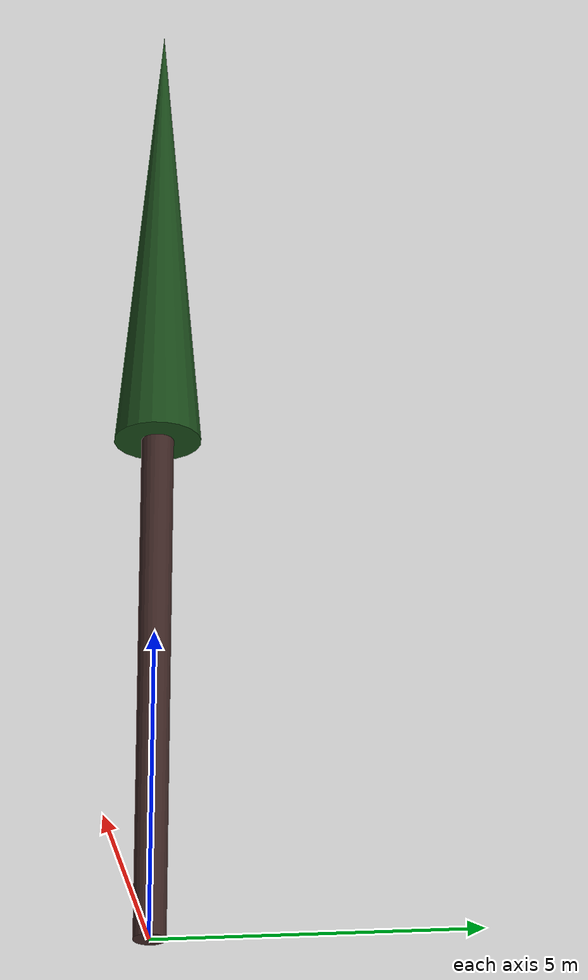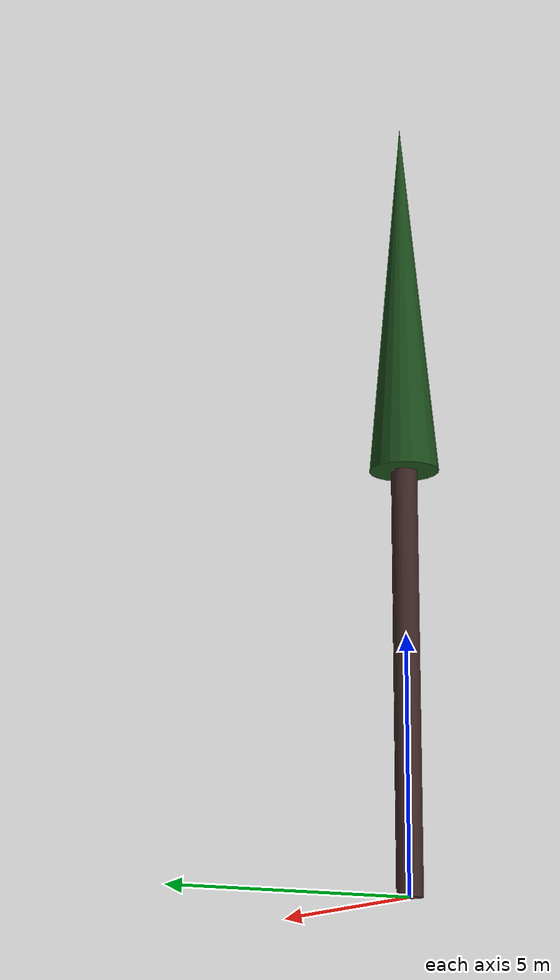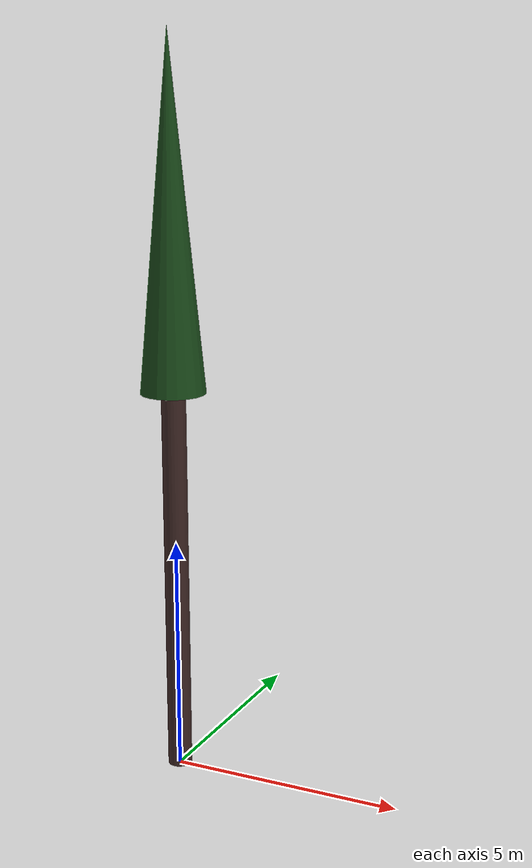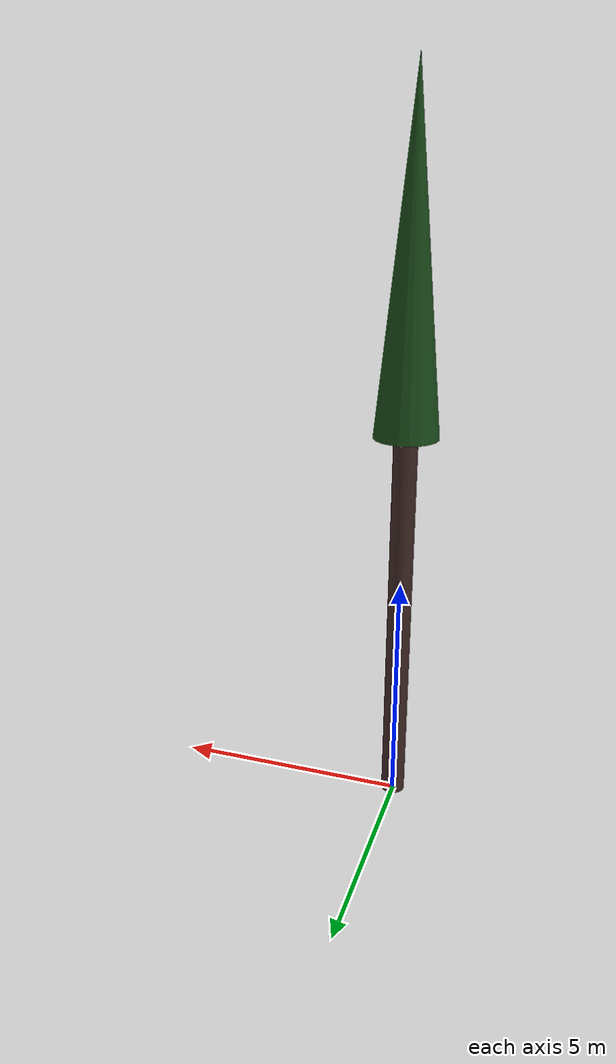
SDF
<?xml version="1.0" ?>
<sdf version="1.10">
  <model name="cypres_provence_02">
    <static>true</static>

    <!-- Tronc -->
    <link name="trunk">
      <pose>0 0 4.128128572598811 0 0 0</pose>
      <visual name="trunk_visual">
        <geometry>
          <cylinder>
            <radius>0.2554719121556512</radius>
            <length>8.256257145197623</length>
          </cylinder>
        </geometry>
        <material>
          <ambient>0.24 0.15 0.14 1</ambient>
          <diffuse>0.24 0.15 0.14 1</diffuse>
          <specular>0.1 0.1 0.1 1</specular>
        </material>
      </visual>
      <collision name="trunk_collision">
        <geometry>
          <cylinder>
            <radius>0.2554719121556512</radius>
            <length>8.256257145197623</length>
          </cylinder>
        </geometry>
      </collision>
    </link>

    <!-- Feuillage -->
    <link name="crown">
      <pose>0 0 11.90239380445841 0 0 0</pose>
      <visual name="crown_visual">
        <geometry>
          <cone>
              <radius>0.6837363814545152</radius>
              <length>7.292273318521575</length>
            </cone>
        </geometry>
        <material>
          <ambient>0.10 0.29 0.10 1</ambient>
          <diffuse>0.10 0.29 0.10 1</diffuse>
          <specular>0.1 0.1 0.1 1</specular>
        </material>
      </visual>
      <collision name="crown_collision">
        <geometry>
          <sphere>
            <radius>0.5469891051636122</radius>
          </sphere>
        </geometry>
      </collision>
    </link>

    <!-- Joint tronc-feuillage -->
    <joint name="trunk_crown_joint" type="fixed">
      <parent>trunk</parent>
      <child>crown</child>
    </joint>

  </model>
</sdf>
